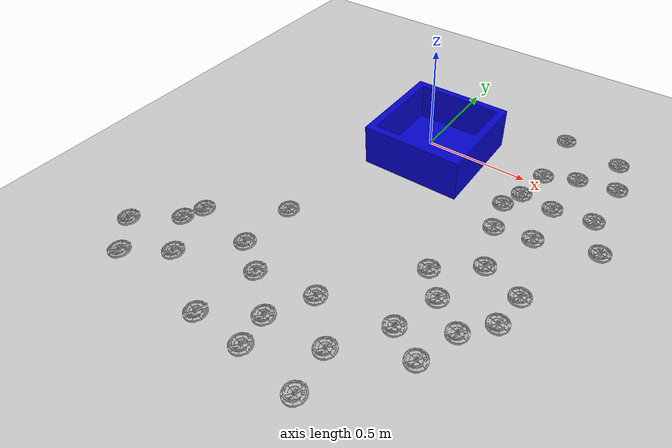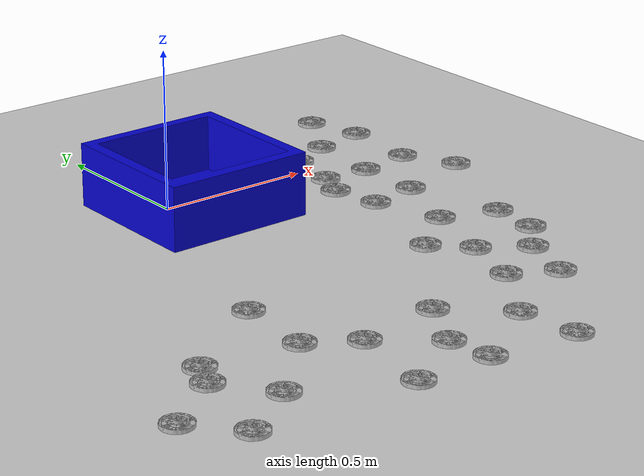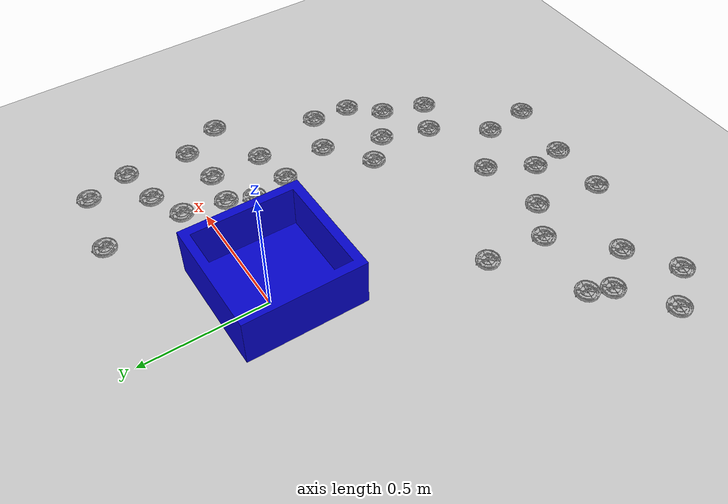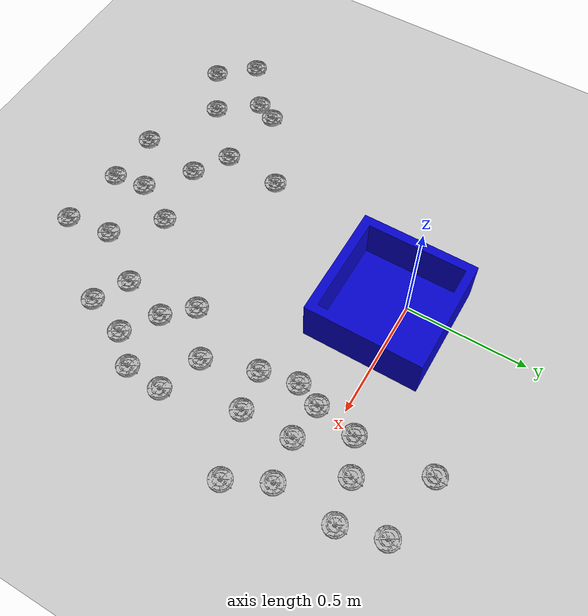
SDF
<sdf version="1.7">
 <world name="default">
  <light name="sun" type="directional">
   <pose>0 0 10 0 -0 0</pose>
   <diffuse>0.8 0.8 0.8 1</diffuse>
   <specular>0.2 0.2 0.2 1</specular>
   <attenuation>
    <range>1000</range>
    <constant>0.9</constant>
    <linear>0.01</linear>
    <quadratic>0.001</quadratic>
   </attenuation>
   <direction>-0.5 0.1 -0.9</direction>
   <spot><inner_angle>0</inner_angle><outer_angle>0</outer_angle><falloff>0</falloff></spot>
  </light>
  <model name="ground_plane">
   <static>1</static>
   <link name="link">
    <collision name="collision">
     <geometry><plane><normal>0 0 1</normal><size>100 100</size></plane></geometry>
     <surface><friction><ode><mu>100</mu><mu2>50</mu2></ode></friction></surface>
    </collision>
    <visual name="visual">
     <cast_shadows>0</cast_shadows>
     <geometry><plane><normal>0 0 1</normal><size>100 100</size></plane></geometry>
     <material>
      <script><uri>file://media/materials/scripts/gazebo.material</uri><name>Gazebo/Grey</name></script>
     </material>
    </visual>
   </link>
  </model>
  <gravity>0 0 -9.8</gravity>
  <magnetic_field>6e-06 2.3e-05 -4.2e-05</magnetic_field>
  <atmosphere type="adiabatic"/>
  <physics type="ode">
   <max_step_size>0.0025</max_step_size>
   <real_time_factor>1</real_time_factor>
   <real_time_update_rate>2500</real_time_update_rate>
  </physics>
  <scene><ambient>0.4 0.4 0.4 1</ambient><background>0.7 0.7 0.7 1</background><shadows>1</shadows></scene>
  <spherical_coordinates>
   <surface_model>EARTH_WGS84</surface_model>
   <latitude_deg>0</latitude_deg>
   <longitude_deg>0</longitude_deg>
   <elevation>0</elevation>
   <heading_deg>0</heading_deg>
  </spherical_coordinates>
  <model name="object_box">
   <pose>0.059719 -0.055464 0 0 -0 0</pose>
   <static>1</static>
   <link name="object_box">
    <inertial>
     <mass>0.2</mass>
     <inertia><ixx>0.0005</ixx><ixy>0</ixy><ixz>0</ixz><iyy>0.0005</iyy><iyz>0</iyz><izz>0.0005</izz></inertia>
    </inertial>
    <collision name="collision">
     <geometry><mesh><uri>model://object_box/meshed/object_box_kai.dae</uri></mesh></geometry>
    </collision>
    <visual name="visual">
     <geometry><mesh><uri>model://object_box/meshed/object_box_kai.dae</uri></mesh></geometry>
    </visual>
   </link>
  </model>
  <model name="HV8">
   <pose>0.52289 -0.356458 1e-06 -5.7e-05 -1.3e-05 1e-05</pose>
   <static>0</static>
   <link name="HV8">
    <inertial>
     <mass>0.05</mass>
     <inertia><ixx>0.0002</ixx><ixy>0</ixy><ixz>0</ixz><iyy>0.0002</iyy><iyz>0</iyz><izz>0.0002</izz></inertia>
    </inertial>
    <collision name="collishin">
     <geometry><mesh><uri>model://HV8/meshes/HV8_1.stl</uri></mesh></geometry>
    </collision>
    <visual name="visual"><geometry><mesh><uri>model://HV8/meshes/HV8_1.stl</uri></mesh></geometry></visual>
   </link>
  </model>
  <model name="HV8_0">
   <pose>0.491841 -0.201777 -2e-06 -7.9e-05 1.3e-05 9e-06</pose>
   <static>0</static>
   <link name="HV8">
    <inertial>
     <mass>0.05</mass>
     <inertia><ixx>0.0002</ixx><ixy>0</ixy><ixz>0</ixz><iyy>0.0002</iyy><iyz>0</iyz><izz>0.0002</izz></inertia>
    </inertial>
    <collision name="collishin">
     <geometry><mesh><uri>model://HV8/meshes/HV8_1.stl</uri></mesh></geometry>
    </collision>
    <visual name="visual"><geometry><mesh><uri>model://HV8/meshes/HV8_1.stl</uri></mesh></geometry></visual>
   </link>
  </model>
  <model name="HV8_1">
   <pose>0.534334 -0.100202 0 -2.7e-05 -6e-06 9e-06</pose>
   <static>0</static>
   <link name="HV8">
    <inertial>
     <mass>0.05</mass>
     <inertia><ixx>0.0002</ixx><ixy>0</ixy><ixz>0</ixz><iyy>0.0002</iyy><iyz>0</iyz><izz>0.0002</izz></inertia>
    </inertial>
    <collision name="collishin">
     <geometry><mesh><uri>model://HV8/meshes/HV8_1.stl</uri></mesh></geometry>
    </collision>
    <visual name="visual"><geometry><mesh><uri>model://HV8/meshes/HV8_1.stl</uri></mesh></geometry></visual>
   </link>
  </model>
  <model name="HV8_2">
   <pose>0.687936 -0.32876 -2e-06 2e-06 8.3e-05 8e-06</pose>
   <static>0</static>
   <link name="HV8">
    <inertial>
     <mass>0.05</mass>
     <inertia><ixx>0.0002</ixx><ixy>0</ixy><ixz>0</ixz><iyy>0.0002</iyy><iyz>0</iyz><izz>0.0002</izz></inertia>
    </inertial>
    <collision name="collishin">
     <geometry><mesh><uri>model://HV8/meshes/HV8_1.stl</uri></mesh></geometry>
    </collision>
    <visual name="visual"><geometry><mesh><uri>model://HV8/meshes/HV8_1.stl</uri></mesh></geometry></visual>
   </link>
  </model>
  <model name="HV8_3">
   <pose>0.686205 -0.115208 2e-06 -4.4e-05 -3.2e-05 7e-06</pose>
   <static>0</static>
   <link name="HV8">
    <inertial>
     <mass>0.05</mass>
     <inertia><ixx>0.0002</ixx><ixy>0</ixy><ixz>0</ixz><iyy>0.0002</iyy><iyz>0</iyz><izz>0.0002</izz></inertia>
    </inertial>
    <collision name="collishin">
     <geometry><mesh><uri>model://HV8/meshes/HV8_1.stl</uri></mesh></geometry>
    </collision>
    <visual name="visual"><geometry><mesh><uri>model://HV8/meshes/HV8_1.stl</uri></mesh></geometry></visual>
   </link>
  </model>
  <model name="HV8_4">
   <pose>0.566316 0.07195 0 -2.3e-05 1.7e-05 6e-06</pose>
   <static>0</static>
   <link name="HV8">
    <inertial>
     <mass>0.05</mass>
     <inertia><ixx>0.0002</ixx><ixy>0</ixy><ixz>0</ixz><iyy>0.0002</iyy><iyz>0</iyz><izz>0.0002</izz></inertia>
    </inertial>
    <collision name="collishin">
     <geometry><mesh><uri>model://HV8/meshes/HV8_1.stl</uri></mesh></geometry>
    </collision>
    <visual name="visual"><geometry><mesh><uri>model://HV8/meshes/HV8_1.stl</uri></mesh></geometry></visual>
   </link>
  </model>
  <model name="HV8_5">
   <pose>0.707533 0.134835 -3e-06 4.4e-05 4.1e-05 6e-06</pose>
   <static>0</static>
   <link name="HV8">
    <inertial>
     <mass>0.05</mass>
     <inertia><ixx>0.0002</ixx><ixy>0</ixy><ixz>0</ixz><iyy>0.0002</iyy><iyz>0</iyz><izz>0.0002</izz></inertia>
    </inertial>
    <collision name="collishin">
     <geometry><mesh><uri>model://HV8/meshes/HV8_1.stl</uri></mesh></geometry>
    </collision>
    <visual name="visual"><geometry><mesh><uri>model://HV8/meshes/HV8_1.stl</uri></mesh></geometry></visual>
   </link>
  </model>
  <model name="HV8_6">
   <pose>0.592039 -0.571548 1e-06 2.7e-05 -1.1e-05 6e-06</pose>
   <static>0</static>
   <link name="HV8">
    <inertial>
     <mass>0.05</mass>
     <inertia><ixx>0.0002</ixx><ixy>0</ixy><ixz>0</ixz><iyy>0.0002</iyy><iyz>0</iyz><izz>0.0002</izz></inertia>
    </inertial>
    <collision name="collishin">
     <geometry><mesh><uri>model://HV8/meshes/HV8_1.stl</uri></mesh></geometry>
    </collision>
    <visual name="visual"><geometry><mesh><uri>model://HV8/meshes/HV8_1.stl</uri></mesh></geometry></visual>
   </link>
  </model>
  <model name="HV8_7">
   <pose>0.769716 -0.63397 -0 0 1e-06 6e-06</pose>
   <static>0</static>
   <link name="HV8">
    <inertial>
     <mass>0.05</mass>
     <inertia><ixx>0.0002</ixx><ixy>0</ixy><ixz>0</ixz><iyy>0.0002</iyy><iyz>0</iyz><izz>0.0002</izz></inertia>
    </inertial>
    <collision name="collishin">
     <geometry><mesh><uri>model://HV8/meshes/HV8_1.stl</uri></mesh></geometry>
    </collision>
    <visual name="visual"><geometry><mesh><uri>model://HV8/meshes/HV8_1.stl</uri></mesh></geometry></visual>
   </link>
  </model>
  <model name="HV8_8">
   <pose>0.881201 0.166353 -4e-06 -9.9e-05 -4.9e-05 5e-06</pose>
   <static>0</static>
   <link name="HV8">
    <inertial>
     <mass>0.05</mass>
     <inertia><ixx>0.0002</ixx><ixy>0</ixy><ixz>0</ixz><iyy>0.0002</iyy><iyz>0</iyz><izz>0.0002</izz></inertia>
    </inertial>
    <collision name="collishin">
     <geometry><mesh><uri>model://HV8/meshes/HV8_1.stl</uri></mesh></geometry>
    </collision>
    <visual name="visual"><geometry><mesh><uri>model://HV8/meshes/HV8_1.stl</uri></mesh></geometry></visual>
   </link>
  </model>
  <model name="HV8_9">
   <pose>0.832668 0.341947 -0 -2.3e-05 3e-06 6e-06</pose>
   <static>0</static>
   <link name="HV8">
    <inertial>
     <mass>0.05</mass>
     <inertia><ixx>0.0002</ixx><ixy>0</ixy><ixz>0</ixz><iyy>0.0002</iyy><iyz>0</iyz><izz>0.0002</izz></inertia>
    </inertial>
    <collision name="collishin">
     <geometry><mesh><uri>model://HV8/meshes/HV8_1.stl</uri></mesh></geometry>
    </collision>
    <visual name="visual"><geometry><mesh><uri>model://HV8/meshes/HV8_1.stl</uri></mesh></geometry></visual>
   </link>
  </model>
  <model name="HV8_10">
   <pose>0.557061 0.386086 1e-06 4e-06 1.8e-05 5e-06</pose>
   <static>0</static>
   <link name="HV8">
    <inertial>
     <mass>0.05</mass>
     <inertia><ixx>0.0002</ixx><ixy>0</ixy><ixz>0</ixz><iyy>0.0002</iyy><iyz>0</iyz><izz>0.0002</izz></inertia>
    </inertial>
    <collision name="collishin">
     <geometry><mesh><uri>model://HV8/meshes/HV8_1.stl</uri></mesh></geometry>
    </collision>
    <visual name="visual"><geometry><mesh><uri>model://HV8/meshes/HV8_1.stl</uri></mesh></geometry></visual>
   </link>
  </model>
  <model name="HV8_11">
   <pose>0.862806 -0.089259 -0 -2.7e-05 8e-06 5e-06</pose>
   <static>0</static>
   <link name="HV8">
    <inertial>
     <mass>0.05</mass>
     <inertia><ixx>0.0002</ixx><ixy>0</ixy><ixz>0</ixz><iyy>0.0002</iyy><iyz>0</iyz><izz>0.0002</izz></inertia>
    </inertial>
    <collision name="collishin">
     <geometry><mesh><uri>model://HV8/meshes/HV8_1.stl</uri></mesh></geometry>
    </collision>
    <visual name="visual"><geometry><mesh><uri>model://HV8/meshes/HV8_1.stl</uri></mesh></geometry></visual>
   </link>
  </model>
  <model name="HV8_12">
   <pose>0.945522 -0.253596 -1e-06 -3.4e-05 1e-06 4e-06</pose>
   <static>0</static>
   <link name="HV8">
    <inertial>
     <mass>0.05</mass>
     <inertia><ixx>0.0002</ixx><ixy>0</ixy><ixz>0</ixz><iyy>0.0002</iyy><iyz>0</iyz><izz>0.0002</izz></inertia>
    </inertial>
    <collision name="collishin">
     <geometry><mesh><uri>model://HV8/meshes/HV8_1.stl</uri></mesh></geometry>
    </collision>
    <visual name="visual"><geometry><mesh><uri>model://HV8/meshes/HV8_1.stl</uri></mesh></geometry></visual>
   </link>
  </model>
  <model name="HV8_13">
   <pose>0.514677 -0.810611 -1e-06 -8e-05 2.2e-05 4e-06</pose>
   <static>0</static>
   <link name="HV8">
    <inertial>
     <mass>0.05</mass>
     <inertia><ixx>0.0002</ixx><ixy>0</ixy><ixz>0</ixz><iyy>0.0002</iyy><iyz>0</iyz><izz>0.0002</izz></inertia>
    </inertial>
    <collision name="collishin">
     <geometry><mesh><uri>model://HV8/meshes/HV8_1.stl</uri></mesh></geometry>
    </collision>
    <visual name="visual"><geometry><mesh><uri>model://HV8/meshes/HV8_1.stl</uri></mesh></geometry></visual>
   </link>
  </model>
  <model name="HV8_14">
   <pose>0.414983 -0.705782 -2e-06 4.9e-05 1.6e-05 4e-06</pose>
   <static>0</static>
   <link name="HV8">
    <inertial>
     <mass>0.05</mass>
     <inertia><ixx>0.0002</ixx><ixy>0</ixy><ixz>0</ixz><iyy>0.0002</iyy><iyz>0</iyz><izz>0.0002</izz></inertia>
    </inertial>
    <collision name="collishin">
     <geometry><mesh><uri>model://HV8/meshes/HV8_1.stl</uri></mesh></geometry>
    </collision>
    <visual name="visual"><geometry><mesh><uri>model://HV8/meshes/HV8_1.stl</uri></mesh></geometry></visual>
   </link>
  </model>
  <model name="HV8_15">
   <pose>0.652454 -0.904802 -0 -2.5e-05 3e-06 4e-06</pose>
   <static>0</static>
   <link name="HV8">
    <inertial>
     <mass>0.05</mass>
     <inertia><ixx>0.0002</ixx><ixy>0</ixy><ixz>0</ixz><iyy>0.0002</iyy><iyz>0</iyz><izz>0.0002</izz></inertia>
    </inertial>
    <collision name="collishin">
     <geometry><mesh><uri>model://HV8/meshes/HV8_1.stl</uri></mesh></geometry>
    </collision>
    <visual name="visual"><geometry><mesh><uri>model://HV8/meshes/HV8_1.stl</uri></mesh></geometry></visual>
   </link>
  </model>
  <model name="HV8_16">
   <pose>0.451006 -1.0051 -0 -1.1e-05 8e-06 4e-06</pose>
   <static>0</static>
   <link name="HV8">
    <inertial>
     <mass>0.05</mass>
     <inertia><ixx>0.0002</ixx><ixy>0</ixy><ixz>0</ixz><iyy>0.0002</iyy><iyz>0</iyz><izz>0.0002</izz></inertia>
    </inertial>
    <collision name="collishin">
     <geometry><mesh><uri>model://HV8/meshes/HV8_1.stl</uri></mesh></geometry>
    </collision>
    <visual name="visual"><geometry><mesh><uri>model://HV8/meshes/HV8_1.stl</uri></mesh></geometry></visual>
   </link>
  </model>
  <model name="HV8_17">
   <pose>0.754974 -0.79015 0 0 -0 4e-06</pose>
   <static>0</static>
   <link name="HV8">
    <inertial>
     <mass>0.05</mass>
     <inertia><ixx>0.0002</ixx><ixy>0</ixy><ixz>0</ixz><iyy>0.0002</iyy><iyz>0</iyz><izz>0.0002</izz></inertia>
    </inertial>
    <collision name="collishin">
     <geometry><mesh><uri>model://HV8/meshes/HV8_1.stl</uri></mesh></geometry>
    </collision>
    <visual name="visual"><geometry><mesh><uri>model://HV8/meshes/HV8_1.stl</uri></mesh></geometry></visual>
   </link>
  </model>
  <model name="HV8_18">
   <pose>0.58956 -1.07955 0 3.7e-05 -5.4e-05 4e-06</pose>
   <static>0</static>
   <link name="HV8">
    <inertial>
     <mass>0.05</mass>
     <inertia><ixx>0.0002</ixx><ixy>0</ixy><ixz>0</ixz><iyy>0.0002</iyy><iyz>0</iyz><izz>0.0002</izz></inertia>
    </inertial>
    <collision name="collishin">
     <geometry><mesh><uri>model://HV8/meshes/HV8_1.stl</uri></mesh></geometry>
    </collision>
    <visual name="visual"><geometry><mesh><uri>model://HV8/meshes/HV8_1.stl</uri></mesh></geometry></visual>
   </link>
  </model>
  <model name="HV8_19">
   <pose>0.030604 -1.23222 -1e-06 -3e-05 -3e-06 4e-06</pose>
   <static>0</static>
   <link name="HV8">
    <inertial>
     <mass>0.05</mass>
     <inertia><ixx>0.0002</ixx><ixy>0</ixy><ixz>0</ixz><iyy>0.0002</iyy><iyz>0</iyz><izz>0.0002</izz></inertia>
    </inertial>
    <collision name="collishin">
     <geometry><mesh><uri>model://HV8/meshes/HV8_1.stl</uri></mesh></geometry>
    </collision>
    <visual name="visual"><geometry><mesh><uri>model://HV8/meshes/HV8_1.stl</uri></mesh></geometry></visual>
   </link>
  </model>
  <model name="HV8_20">
   <pose>0.326378 -1.40496 -2e-06 -4e-05 -6.1e-05 3e-06</pose>
   <static>0</static>
   <link name="HV8">
    <inertial>
     <mass>0.05</mass>
     <inertia><ixx>0.0002</ixx><ixy>0</ixy><ixz>0</ixz><iyy>0.0002</iyy><iyz>0</iyz><izz>0.0002</izz></inertia>
    </inertial>
    <collision name="collishin">
     <geometry><mesh><uri>model://HV8/meshes/HV8_1.stl</uri></mesh></geometry>
    </collision>
    <visual name="visual"><geometry><mesh><uri>model://HV8/meshes/HV8_1.stl</uri></mesh></geometry></visual>
   </link>
  </model>
  <model name="HV8_21">
   <pose>0.302845 -1.21613 -2e-06 -2.6e-05 7.6e-05 3e-06</pose>
   <static>0</static>
   <link name="HV8">
    <inertial>
     <mass>0.05</mass>
     <inertia><ixx>0.0002</ixx><ixy>0</ixy><ixz>0</ixz><iyy>0.0002</iyy><iyz>0</iyz><izz>0.0002</izz></inertia>
    </inertial>
    <collision name="collishin">
     <geometry><mesh><uri>model://HV8/meshes/HV8_1.stl</uri></mesh></geometry>
    </collision>
    <visual name="visual"><geometry><mesh><uri>model://HV8/meshes/HV8_1.stl</uri></mesh></geometry></visual>
   </link>
  </model>
  <model name="HV8_22">
   <pose>0.13049 -1.05619 4e-06 -1.5e-05 -9.1e-05 3e-06</pose>
   <static>0</static>
   <link name="HV8">
    <inertial>
     <mass>0.05</mass>
     <inertia><ixx>0.0002</ixx><ixy>0</ixy><ixz>0</ixz><iyy>0.0002</iyy><iyz>0</iyz><izz>0.0002</izz></inertia>
    </inertial>
    <collision name="collishin">
     <geometry><mesh><uri>model://HV8/meshes/HV8_1.stl</uri></mesh></geometry>
    </collision>
    <visual name="visual"><geometry><mesh><uri>model://HV8/meshes/HV8_1.stl</uri></mesh></geometry></visual>
   </link>
  </model>
  <model name="HV8_23">
   <pose>-0.141188 -1.09533 1e-06 -7e-06 3.2e-05 3e-06</pose>
   <static>0</static>
   <link name="HV8">
    <inertial>
     <mass>0.05</mass>
     <inertia><ixx>0.0002</ixx><ixy>0</ixy><ixz>0</ixz><iyy>0.0002</iyy><iyz>0</iyz><izz>0.0002</izz></inertia>
    </inertial>
    <collision name="collishin">
     <geometry><mesh><uri>model://HV8/meshes/HV8_1.stl</uri></mesh></geometry>
    </collision>
    <visual name="visual"><geometry><mesh><uri>model://HV8/meshes/HV8_1.stl</uri></mesh></geometry></visual>
   </link>
  </model>
  <model name="HV8_24">
   <pose>0.049781 -1.36845 4e-06 -0.000131 5.8e-05 3e-06</pose>
   <static>0</static>
   <link name="HV8">
    <inertial>
     <mass>0.05</mass>
     <inertia><ixx>0.0002</ixx><ixy>0</ixy><ixz>0</ixz><iyy>0.0002</iyy><iyz>0</iyz><izz>0.0002</izz></inertia>
    </inertial>
    <collision name="collishin">
     <geometry><mesh><uri>model://HV8/meshes/HV8_1.stl</uri></mesh></geometry>
    </collision>
    <visual name="visual"><geometry><mesh><uri>model://HV8/meshes/HV8_1.stl</uri></mesh></geometry></visual>
   </link>
  </model>
  <model name="HV8_25">
   <pose>-0.187809 -1.36065 -1e-06 -7.1e-05 9e-06 3e-06</pose>
   <static>0</static>
   <link name="HV8">
    <inertial>
     <mass>0.05</mass>
     <inertia><ixx>0.0002</ixx><ixy>0</ixy><ixz>0</ixz><iyy>0.0002</iyy><iyz>0</iyz><izz>0.0002</izz></inertia>
    </inertial>
    <collision name="collishin">
     <geometry><mesh><uri>model://HV8/meshes/HV8_1.stl</uri></mesh></geometry>
    </collision>
    <visual name="visual"><geometry><mesh><uri>model://HV8/meshes/HV8_1.stl</uri></mesh></geometry></visual>
   </link>
  </model>
  <model name="HV8_26">
   <pose>-0.491486 -1.20288 -0 -7.9e-05 3.1e-05 3e-06</pose>
   <static>0</static>
   <link name="HV8">
    <inertial>
     <mass>0.05</mass>
     <inertia><ixx>0.0002</ixx><ixy>0</ixy><ixz>0</ixz><iyy>0.0002</iyy><iyz>0</iyz><izz>0.0002</izz></inertia>
    </inertial>
    <collision name="collishin">
     <geometry><mesh><uri>model://HV8/meshes/HV8_1.stl</uri></mesh></geometry>
    </collision>
    <visual name="visual"><geometry><mesh><uri>model://HV8/meshes/HV8_1.stl</uri></mesh></geometry></visual>
   </link>
  </model>
  <model name="HV8_27">
   <pose>-0.285309 -1.00466 1e-06 -4.5e-05 -8e-06 2e-06</pose>
   <static>0</static>
   <link name="HV8">
    <inertial>
     <mass>0.05</mass>
     <inertia><ixx>0.0002</ixx><ixy>0</ixy><ixz>0</ixz><iyy>0.0002</iyy><iyz>0</iyz><izz>0.0002</izz></inertia>
    </inertial>
    <collision name="collishin">
     <geometry><mesh><uri>model://HV8/meshes/HV8_1.stl</uri></mesh></geometry>
    </collision>
    <visual name="visual"><geometry><mesh><uri>model://HV8/meshes/HV8_1.stl</uri></mesh></geometry></visual>
   </link>
  </model>
  <model name="HV8_28">
   <pose>-0.571668 -0.958813 -2e-06 7e-06 -7.5e-05 3e-06</pose>
   <static>0</static>
   <link name="HV8">
    <inertial>
     <mass>0.05</mass>
     <inertia><ixx>0.0002</ixx><ixy>0</ixy><ixz>0</ixz><iyy>0.0002</iyy><iyz>0</iyz><izz>0.0002</izz></inertia>
    </inertial>
    <collision name="collishin">
     <geometry><mesh><uri>model://HV8/meshes/HV8_1.stl</uri></mesh></geometry>
    </collision>
    <visual name="visual"><geometry><mesh><uri>model://HV8/meshes/HV8_1.stl</uri></mesh></geometry></visual>
   </link>
  </model>
  <model name="HV8_29">
   <pose>-0.61089 -1.04661 -2e-06 1.1e-05 5.3e-05 2e-06</pose>
   <static>0</static>
   <link name="HV8">
    <inertial>
     <mass>0.05</mass>
     <inertia><ixx>0.0002</ixx><ixy>0</ixy><ixz>0</ixz><iyy>0.0002</iyy><iyz>0</iyz><izz>0.0002</izz></inertia>
    </inertial>
    <collision name="collishin">
     <geometry><mesh><uri>model://HV8/meshes/HV8_1.stl</uri></mesh></geometry>
    </collision>
    <visual name="visual"><geometry><mesh><uri>model://HV8/meshes/HV8_1.stl</uri></mesh></geometry></visual>
   </link>
  </model>
  <model name="HV8_30">
   <pose>-0.798744 -1.18102 1e-06 -9.4e-05 -2.8e-05 2e-06</pose>
   <static>0</static>
   <link name="HV8">
    <inertial>
     <mass>0.05</mass>
     <inertia><ixx>0.0002</ixx><ixy>0</ixy><ixz>0</ixz><iyy>0.0002</iyy><iyz>0</iyz><izz>0.0002</izz></inertia>
    </inertial>
    <collision name="collishin">
     <geometry><mesh><uri>model://HV8/meshes/HV8_1.stl</uri></mesh></geometry>
    </collision>
    <visual name="visual"><geometry><mesh><uri>model://HV8/meshes/HV8_1.stl</uri></mesh></geometry></visual>
   </link>
  </model>
  <model name="HV8_31">
   <pose>-0.677566 -1.32125 -1e-06 -5e-06 2e-05 2e-06</pose>
   <static>0</static>
   <link name="HV8">
    <inertial>
     <mass>0.05</mass>
     <inertia><ixx>0.0002</ixx><ixy>0</ixy><ixz>0</ixz><iyy>0.0002</iyy><iyz>0</iyz><izz>0.0002</izz></inertia>
    </inertial>
    <collision name="collishin">
     <geometry><mesh><uri>model://HV8/meshes/HV8_1.stl</uri></mesh></geometry>
    </collision>
    <visual name="visual"><geometry><mesh><uri>model://HV8/meshes/HV8_1.stl</uri></mesh></geometry></visual>
   </link>
  </model>
  <model name="HV8_32">
   <pose>-0.264363 -0.757077 2e-06 -7e-06 -6.1e-05 2e-06</pose>
   <static>0</static>
   <link name="HV8">
    <inertial>
     <mass>0.05</mass>
     <inertia><ixx>0.0002</ixx><ixy>0</ixy><ixz>0</ixz><iyy>0.0002</iyy><iyz>0</iyz><izz>0.0002</izz></inertia>
    </inertial>
    <collision name="collishin">
     <geometry><mesh><uri>model://HV8/meshes/HV8_1.stl</uri></mesh></geometry>
    </collision>
    <visual name="visual"><geometry><mesh><uri>model://HV8/meshes/HV8_1.stl</uri></mesh></geometry></visual>
   </link>
  </model>
 </world>
</sdf>
